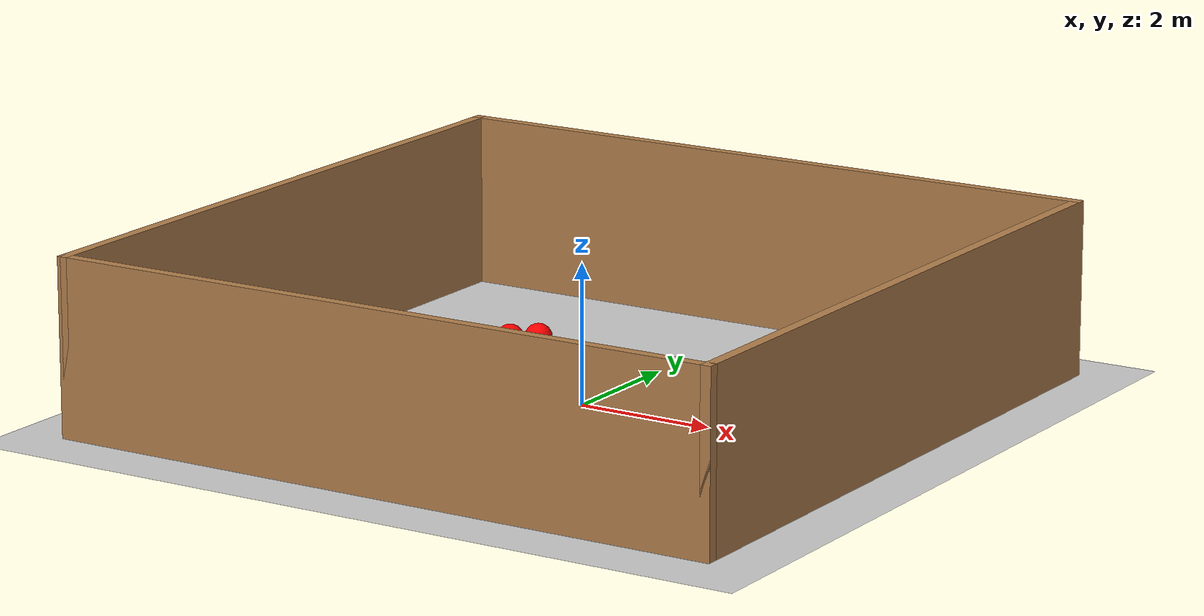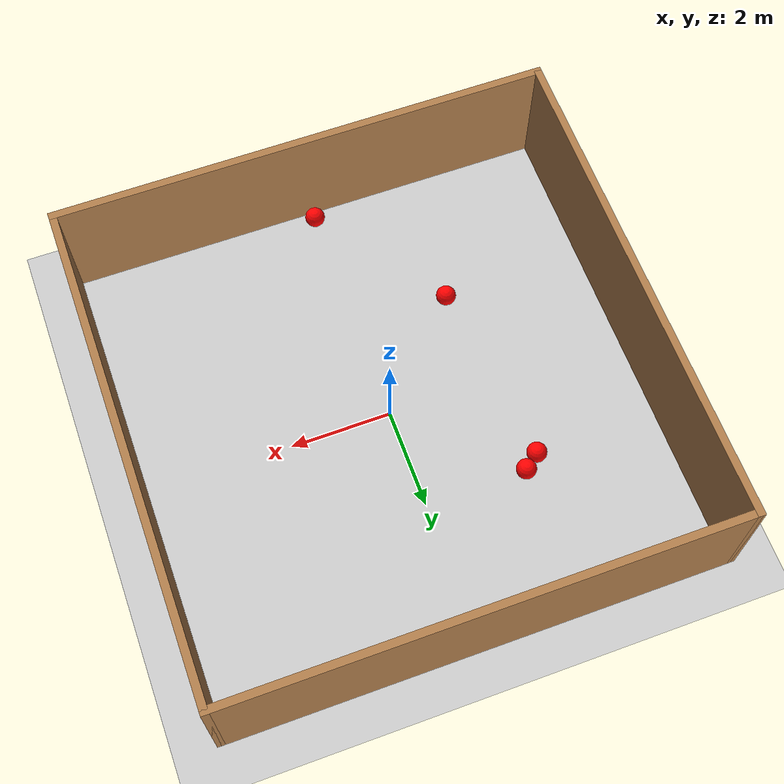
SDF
<sdf version="1.6">
 <world name="default">
  <light name="sun" type="directional">
   <pose>0 0 10 0 -0 0</pose>
   <diffuse>0.8 0.8 0.8 1</diffuse>
   <specular>0.1 0.1 0.1 1</specular>
   <attenuation>
    <range>1000</range>
    <constant>0.9</constant>
    <linear>0.01</linear>
    <quadratic>0.001</quadratic>
   </attenuation>
   <direction>-0.5 0.5 -1</direction>
  </light>
  <model name="ground_plane">
   <static>1</static>
   <link name="link">
    <collision name="collision">
     <geometry><plane><normal>0 0 1</normal><size>100 100</size></plane></geometry>
     <surface><friction><ode><mu>100</mu><mu2>50</mu2></ode></friction></surface>
    </collision>
    <visual name="visual">
     <cast_shadows>0</cast_shadows>
     <geometry><plane><normal>0 0 1</normal><size>100 100</size></plane></geometry>
     <material>
      <script><uri>file://media/materials/scripts/gazebo.material</uri><name>Gazebo/Grey</name></script>
     </material>
    </visual>
   </link>
  </model>
  <gravity>0 0 -9.8</gravity>
  <magnetic_field>6e-06 2.3e-05 -4.2e-05</magnetic_field>
  <atmosphere type="adiabatic"/>
  <physics name="default_physics" default="0" type="ode">
   <max_step_size>0.001</max_step_size>
   <real_time_factor>1</real_time_factor>
   <real_time_update_rate>1000</real_time_update_rate>
  </physics>
  <scene><ambient>0.4 0.4 0.4 1</ambient><background>0.7 0.7 0.7 1</background><shadows>1</shadows></scene>
  <spherical_coordinates>
   <surface_model>EARTH_WGS84</surface_model>
   <latitude_deg>0</latitude_deg>
   <longitude_deg>0</longitude_deg>
   <elevation>0</elevation>
   <heading_deg>0</heading_deg>
  </spherical_coordinates>
  <model name="emptyroom">
   <pose>0.017915 -0.0146 0 0 -0 0</pose>
   <link name="Wall_13">
    <collision name="Wall_13_Collision">
     <geometry><box><size>10 0.15 2.5</size></box></geometry>
     <pose>0 0 1.25 0 -0 0</pose>
    </collision>
    <visual name="Wall_13_Visual">
     <pose>0 0 1.25 0 -0 0</pose>
     <geometry><box><size>10 0.15 2.5</size></box></geometry>
     <material>
      <script><uri>file://media/materials/scripts/gazebo.material</uri><name>Gazebo/Wood</name></script>
      <ambient>1 1 1 1</ambient>
     </material>
    </visual>
    <pose>0 -4.925 0 0 -0 0</pose>
   </link>
   <link name="Wall_15">
    <collision name="Wall_15_Collision">
     <geometry><box><size>10 0.15 2.5</size></box></geometry>
     <pose>0 0 1.25 0 -0 0</pose>
    </collision>
    <visual name="Wall_15_Visual">
     <pose>0 0 1.25 0 -0 0</pose>
     <geometry><box><size>10 0.15 2.5</size></box></geometry>
     <material>
      <script><uri>file://media/materials/scripts/gazebo.material</uri><name>Gazebo/Wood</name></script>
      <ambient>1 1 1 1</ambient>
     </material>
    </visual>
    <pose>-4.925 0 0 0 -0 1.5708</pose>
   </link>
   <link name="Wall_16">
    <collision name="Wall_16_Collision">
     <geometry><box><size>10 0.15 2.5</size></box></geometry>
     <pose>0 0 1.25 0 -0 0</pose>
    </collision>
    <visual name="Wall_16_Visual">
     <pose>0 0 1.25 0 -0 0</pose>
     <geometry><box><size>10 0.15 2.5</size></box></geometry>
     <material>
      <script><uri>file://media/materials/scripts/gazebo.material</uri><name>Gazebo/Wood</name></script>
      <ambient>1 1 1 1</ambient>
     </material>
    </visual>
    <pose>0 4.925 0 0 -0 0</pose>
   </link>
   <link name="Wall_17">
    <collision name="Wall_17_Collision">
     <geometry><box><size>10 0.15 2.5</size></box></geometry>
     <pose>0 0 1.25 0 -0 0</pose>
    </collision>
    <visual name="Wall_17_Visual">
     <pose>0 0 1.25 0 -0 0</pose>
     <geometry><box><size>10 0.15 2.5</size></box></geometry>
     <material>
      <script><uri>file://media/materials/scripts/gazebo.material</uri><name>Gazebo/Wood</name></script>
      <ambient>1 1 1 1</ambient>
     </material>
    </visual>
    <pose>4.925 0 0 0 0 -1.5708</pose>
   </link>
   <static>1</static>
  </model>
  <model name="redball">
   <link name="link">
    <pose>0 0 0.2 0 -0 0</pose>
    <inertial>
     <mass>1</mass>
     <inertia><ixx>0.1</ixx><ixy>0</ixy><ixz>0</ixz><iyy>0.1</iyy><iyz>0</iyz><izz>0.1</izz></inertia>
    </inertial>
    <visual name="visual">
     <geometry><sphere><radius>0.2</radius></sphere></geometry>
     <material>
      <script><name>Gazebo/Grey</name><uri>file://media/materials/scripts/gazebo.material</uri></script>
      <ambient>1 0 0 1</ambient>
      <diffuse>1 0 0 1</diffuse>
      <specular>1 0 0 1</specular>
      <emissive>0 0 0 1</emissive>
      <shader type="vertex"><normal_map>__default__</normal_map></shader>
     </material>
    </visual>
    <collision name="collision">
     <geometry><sphere><radius>0.2</radius></sphere></geometry>
     <surface>
      <friction>
       <ode><mu>1</mu><mu2>1</mu2><fdir1>0 0 0</fdir1><slip1>0</slip1><slip2>0</slip2></ode>
       <torsional>
        <coefficient>1</coefficient>
        <patch_radius>0</patch_radius>
        <surface_radius>0</surface_radius>
        <use_patch_radius>1</use_patch_radius>
        <ode><slip>0</slip></ode>
       </torsional>
      </friction>
      <bounce><restitution_coefficient>0</restitution_coefficient><threshold>1e+06</threshold></bounce>
      <contact>
       <collide_without_contact>0</collide_without_contact>
       <collide_without_contact_bitmask>1</collide_without_contact_bitmask>
       <collide_bitmask>1</collide_bitmask>
       <ode>
        <soft_cfm>0</soft_cfm>
        <soft_erp>0.2</soft_erp>
        <kp>1e+13</kp>
        <kd>1</kd>
        <max_vel>0.01</max_vel>
        <min_depth>0</min_depth>
       </ode>
       <bullet>
        <split_impulse>1</split_impulse>
        <split_impulse_penetration_threshold>-0.01</split_impulse_penetration_threshold>
        <soft_cfm>0</soft_cfm>
        <soft_erp>0.2</soft_erp>
        <kp>1e+13</kp>
        <kd>1</kd>
       </bullet>
      </contact>
     </surface>
    </collision>
   </link>
   <static>0</static>
   <pose>4.61778 4.57885 0 0 -0 0</pose>
  </model>
  <model name="redball_0">
   <link name="link">
    <pose>0 0 0.2 0 -0 0</pose>
    <inertial>
     <mass>1</mass>
     <inertia><ixx>0.1</ixx><ixy>0</ixy><ixz>0</ixz><iyy>0.1</iyy><iyz>0</iyz><izz>0.1</izz></inertia>
    </inertial>
    <visual name="visual">
     <geometry><sphere><radius>0.2</radius></sphere></geometry>
     <material>
      <script><name>Gazebo/Grey</name><uri>file://media/materials/scripts/gazebo.material</uri></script>
      <ambient>1 0 0 1</ambient>
      <diffuse>1 0 0 1</diffuse>
      <specular>1 0 0 1</specular>
      <emissive>0 0 0 1</emissive>
      <shader type="vertex"><normal_map>__default__</normal_map></shader>
     </material>
    </visual>
    <collision name="collision">
     <geometry><sphere><radius>0.2</radius></sphere></geometry>
     <surface>
      <friction>
       <ode><mu>1</mu><mu2>1</mu2><fdir1>0 0 0</fdir1><slip1>0</slip1><slip2>0</slip2></ode>
       <torsional>
        <coefficient>1</coefficient>
        <patch_radius>0</patch_radius>
        <surface_radius>0</surface_radius>
        <use_patch_radius>1</use_patch_radius>
        <ode><slip>0</slip></ode>
       </torsional>
      </friction>
      <bounce><restitution_coefficient>0</restitution_coefficient><threshold>1e+06</threshold></bounce>
      <contact>
       <collide_without_contact>0</collide_without_contact>
       <collide_without_contact_bitmask>1</collide_without_contact_bitmask>
       <collide_bitmask>1</collide_bitmask>
       <ode>
        <soft_cfm>0</soft_cfm>
        <soft_erp>0.2</soft_erp>
        <kp>1e+13</kp>
        <kd>1</kd>
        <max_vel>0.01</max_vel>
        <min_depth>0</min_depth>
       </ode>
       <bullet>
        <split_impulse>1</split_impulse>
        <split_impulse_penetration_threshold>-0.01</split_impulse_penetration_threshold>
        <soft_cfm>0</soft_cfm>
        <soft_erp>0.2</soft_erp>
        <kp>1e+13</kp>
        <kd>1</kd>
       </bullet>
      </contact>
     </surface>
    </collision>
   </link>
   <static>0</static>
   <pose>-0.044672 -4.63305 0 0 -0 0</pose>
  </model>
  <model name="redball_1">
   <link name="link">
    <pose>0 0 0.2 0 -0 0</pose>
    <inertial>
     <mass>1</mass>
     <inertia><ixx>0.1</ixx><ixy>0</ixy><ixz>0</ixz><iyy>0.1</iyy><iyz>0</iyz><izz>0.1</izz></inertia>
    </inertial>
    <visual name="visual">
     <geometry><sphere><radius>0.2</radius></sphere></geometry>
     <material>
      <script><name>Gazebo/Grey</name><uri>file://media/materials/scripts/gazebo.material</uri></script>
      <ambient>1 0 0 1</ambient>
      <diffuse>1 0 0 1</diffuse>
      <specular>1 0 0 1</specular>
      <emissive>0 0 0 1</emissive>
      <shader type="vertex"><normal_map>__default__</normal_map></shader>
     </material>
    </visual>
    <collision name="collision">
     <geometry><sphere><radius>0.2</radius></sphere></geometry>
     <surface>
      <friction>
       <ode><mu>1</mu><mu2>1</mu2><fdir1>0 0 0</fdir1><slip1>0</slip1><slip2>0</slip2></ode>
       <torsional>
        <coefficient>1</coefficient>
        <patch_radius>0</patch_radius>
        <surface_radius>0</surface_radius>
        <use_patch_radius>1</use_patch_radius>
        <ode><slip>0</slip></ode>
       </torsional>
      </friction>
      <bounce><restitution_coefficient>0</restitution_coefficient><threshold>1e+06</threshold></bounce>
      <contact>
       <collide_without_contact>0</collide_without_contact>
       <collide_without_contact_bitmask>1</collide_without_contact_bitmask>
       <collide_bitmask>1</collide_bitmask>
       <ode>
        <soft_cfm>0</soft_cfm>
        <soft_erp>0.2</soft_erp>
        <kp>1e+13</kp>
        <kd>1</kd>
        <max_vel>0.01</max_vel>
        <min_depth>0</min_depth>
       </ode>
       <bullet>
        <split_impulse>1</split_impulse>
        <split_impulse_penetration_threshold>-0.01</split_impulse_penetration_threshold>
        <soft_cfm>0</soft_cfm>
        <soft_erp>0.2</soft_erp>
        <kp>1e+13</kp>
        <kd>1</kd>
       </bullet>
      </contact>
     </surface>
    </collision>
   </link>
   <static>0</static>
   <pose>-2.01921 2.03663 0 0 -0 0</pose>
  </model>
  <model name="redball_2">
   <link name="link">
    <pose>0 0 0.2 0 -0 0</pose>
    <inertial>
     <mass>1</mass>
     <inertia><ixx>0.1</ixx><ixy>0</ixy><ixz>0</ixz><iyy>0.1</iyy><iyz>0</iyz><izz>0.1</izz></inertia>
    </inertial>
    <visual name="visual">
     <geometry><sphere><radius>0.2</radius></sphere></geometry>
     <material>
      <script><name>Gazebo/Grey</name><uri>file://media/materials/scripts/gazebo.material</uri></script>
      <ambient>1 0 0 1</ambient>
      <diffuse>1 0 0 1</diffuse>
      <specular>1 0 0 1</specular>
      <emissive>0 0 0 1</emissive>
      <shader type="vertex"><normal_map>__default__</normal_map></shader>
     </material>
    </visual>
    <collision name="collision">
     <geometry><sphere><radius>0.2</radius></sphere></geometry>
     <surface>
      <friction>
       <ode><mu>1</mu><mu2>1</mu2><fdir1>0 0 0</fdir1><slip1>0</slip1><slip2>0</slip2></ode>
       <torsional>
        <coefficient>1</coefficient>
        <patch_radius>0</patch_radius>
        <surface_radius>0</surface_radius>
        <use_patch_radius>1</use_patch_radius>
        <ode><slip>0</slip></ode>
       </torsional>
      </friction>
      <bounce><restitution_coefficient>0</restitution_coefficient><threshold>1e+06</threshold></bounce>
      <contact>
       <collide_without_contact>0</collide_without_contact>
       <collide_without_contact_bitmask>1</collide_without_contact_bitmask>
       <collide_bitmask>1</collide_bitmask>
       <ode>
        <soft_cfm>0</soft_cfm>
        <soft_erp>0.2</soft_erp>
        <kp>1e+13</kp>
        <kd>1</kd>
        <max_vel>0.01</max_vel>
        <min_depth>0</min_depth>
       </ode>
       <bullet>
        <split_impulse>1</split_impulse>
        <split_impulse_penetration_threshold>-0.01</split_impulse_penetration_threshold>
        <soft_cfm>0</soft_cfm>
        <soft_erp>0.2</soft_erp>
        <kp>1e+13</kp>
        <kd>1</kd>
       </bullet>
      </contact>
     </surface>
    </collision>
   </link>
   <static>0</static>
   <pose>-2.33531 1.78833 0 0 -0 0</pose>
  </model>
  <model name="redball_3">
   <link name="link">
    <pose>0 0 0.2 0 -0 0</pose>
    <inertial>
     <mass>1</mass>
     <inertia><ixx>0.1</ixx><ixy>0</ixy><ixz>0</ixz><iyy>0.1</iyy><iyz>0</iyz><izz>0.1</izz></inertia>
    </inertial>
    <visual name="visual">
     <geometry><sphere><radius>0.2</radius></sphere></geometry>
     <material>
      <script><name>Gazebo/Grey</name><uri>file://media/materials/scripts/gazebo.material</uri></script>
      <ambient>1 0 0 1</ambient>
      <diffuse>1 0 0 1</diffuse>
      <specular>1 0 0 1</specular>
      <emissive>0 0 0 1</emissive>
      <shader type="vertex"><normal_map>__default__</normal_map></shader>
     </material>
    </visual>
    <collision name="collision">
     <geometry><sphere><radius>0.2</radius></sphere></geometry>
     <surface>
      <friction>
       <ode><mu>1</mu><mu2>1</mu2><fdir1>0 0 0</fdir1><slip1>0</slip1><slip2>0</slip2></ode>
       <torsional>
        <coefficient>1</coefficient>
        <patch_radius>0</patch_radius>
        <surface_radius>0</surface_radius>
        <use_patch_radius>1</use_patch_radius>
        <ode><slip>0</slip></ode>
       </torsional>
      </friction>
      <bounce><restitution_coefficient>0</restitution_coefficient><threshold>1e+06</threshold></bounce>
      <contact>
       <collide_without_contact>0</collide_without_contact>
       <collide_without_contact_bitmask>1</collide_without_contact_bitmask>
       <collide_bitmask>1</collide_bitmask>
       <ode>
        <soft_cfm>0</soft_cfm>
        <soft_erp>0.2</soft_erp>
        <kp>1e+13</kp>
        <kd>1</kd>
        <max_vel>0.01</max_vel>
        <min_depth>0</min_depth>
       </ode>
       <bullet>
        <split_impulse>1</split_impulse>
        <split_impulse_penetration_threshold>-0.01</split_impulse_penetration_threshold>
        <soft_cfm>0</soft_cfm>
        <soft_erp>0.2</soft_erp>
        <kp>1e+13</kp>
        <kd>1</kd>
       </bullet>
      </contact>
     </surface>
    </collision>
   </link>
   <static>0</static>
   <pose>-1.92733 -1.98789 0 0 -0 0</pose>
  </model>
 </world>
</sdf>
